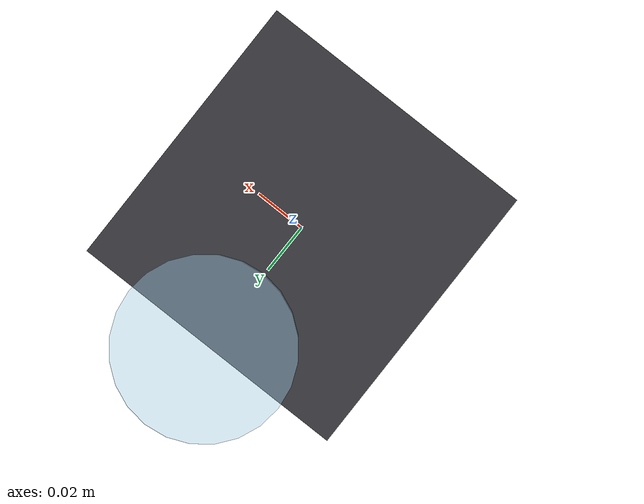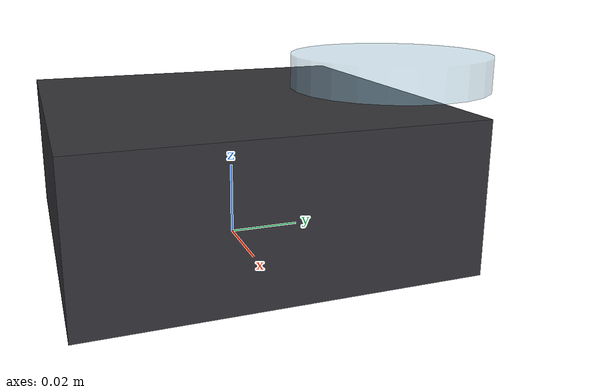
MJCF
<?xml version="1.0" encoding="utf-8"?>
<mujoco model="quartz_crystal_microbalance">
  <compiler angle="radian" autolimits="true"/>
  <default>
    <default class="body"><geom contype="1" conaffinity="1"/></default>
  </default>
  <worldbody>
    <body name="base">
      <geom type="box" size="0.05 0.05 0.02" pos="0 0 0.02" rgba="0.2 0.2 0.22 1" class="body"/>
      <body name="sensor_lid" pos="0 0.05 0.045">
        <joint name="sensor_lid_joint" type="hinge" axis="1 0 0" range="0 1.4" damping="0.15" frictionloss="0.05"/>
  <geom type="cylinder" size="0.03 0.005" pos="0 0 0" rgba="0.6 0.8 0.9 0.4" class="body"/>
      </body>
    </body>
  </worldbody>
</mujoco>
